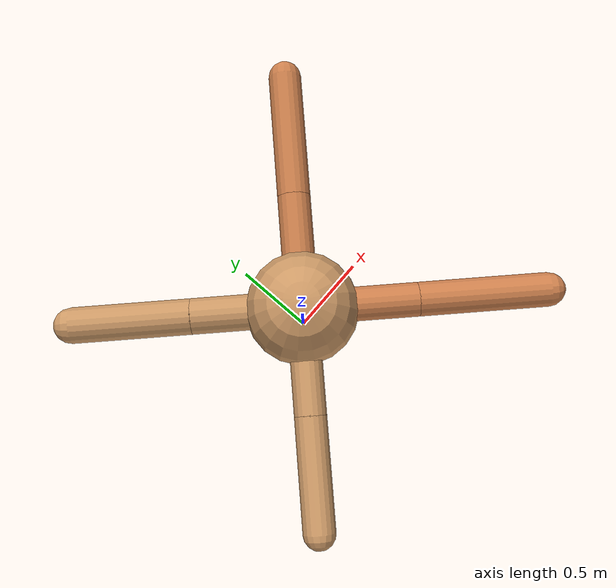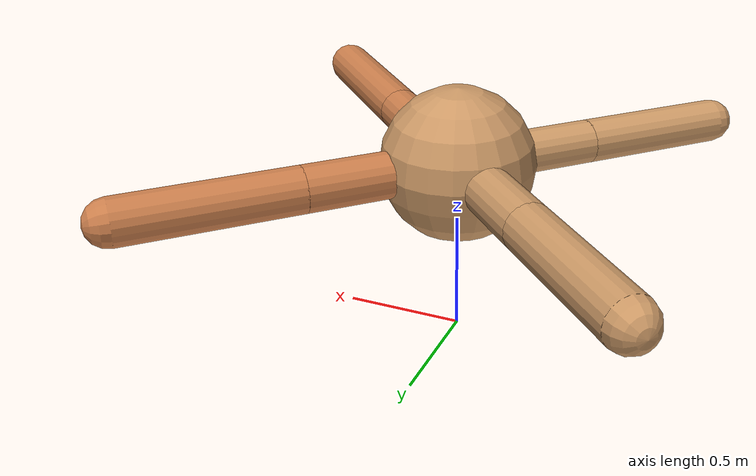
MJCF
<?xml version="1.0" ?>
<mujoco model="ant">

	<compiler angle="degree" coordinate="local" inertiafromgeom="true"/>

	<option integrator="RK4" timestep="0.01"/>

	<custom>

		<numeric data="0.0 0.0 0.55 1.0 0.0 0.0 0.0 0.0 1.0 0.0 -1.0 0.0 -1.0 0.0 1.0" name="init_qpos"/>

	</custom>

	<default>

		<joint armature="1" damping="1" limited="true"/>

		<geom conaffinity="0" condim="3" density="5.0" friction="1.5 0.1 0.1" margin="0.01" rgba="0.8 0.6 0.4 1"/>

	</default>

	<worldbody>

		<body name="torso" pos="0 0 0.75">

			<geom name="torso_geom" pos="0 0 0" size="0.31666438086398024" type="sphere"/>

			<!--joint armature="0" damping="0" limited="false" margin="0.01" name="root" pos="0 0 0" type="free"/-->

			<body name="front_left_leg" pos="0 0 0">

				<geom fromto="0 0 0 0.2 0.2 0" name="aux_1_geom" size="0.09446094950969601" type="capsule" rgba=".8 .5 .3 1"/>

				<body name="aux_1" pos="0.2 0.2 0">

					<joint axis="0 0 1" name="hip_1" pos="0.0 0.0 0.0" range="-40 40" type="hinge"/>

					<geom fromto="0 0 0 0.2522797572731427 0.2522797572731427 0" name="left_leg_geom" size="0.09446094950969601" type="capsule" rgba=".8 .5 .3 1"/>

					<body pos="0.2522797572731427 0.2522797572731427 0" name="front_left_foot">

						<joint axis="-1 1 0" name="ankle_1" pos="0.0 0.0 0.0" range="30 100" type="hinge"/>

						<geom fromto="0 0 0 0.5045595145462854 0.5045595145462854 0" name="left_ankle_geom" size="0.09446094950969601" type="capsule" rgba=".8 .5 .3 1"/>

					</body>

				</body>

			</body>

			<body name="front_right_leg" pos="0 0 0">

				<geom fromto="0 0 0 -0.2 0.2 0" name="aux_2_geom" size="0.10034875814401278" type="capsule"/>

				<body name="aux_2" pos="-0.2 0.2 0">

					<joint axis="0 0 1" name="hip_2" pos="0.0 0.0 0.0" range="-40 40" type="hinge"/>

					<geom fromto="0 0 0 -0.23397866624223693 0.23397866624223693 0" name="right_leg_geom" size="0.10034875814401278" type="capsule"/>

					<body pos="-0.23397866624223693 0.23397866624223693 0" name="front_right_foot">

						<joint axis="1 1 0" name="ankle_2" pos="0.0 0.0 0.0" range="-100 -30" type="hinge"/>

						<geom fromto="0 0 0 -0.46795733248447385 0.46795733248447385 0" name="right_ankle_geom" size="0.10034875814401278" type="capsule"/>

					</body>

				</body>

			</body>

			<body name="left_back_leg" pos="0 0 0">

				<geom fromto="0 0 0 -0.2 -0.2 0" name="aux_3_geom" size="0.09043442194013716" type="capsule"/>

				<body name="aux_3" pos="-0.2 -0.2 0">

					<joint axis="0 0 1" name="hip_3" pos="0.0 0.0 0.0" range="-40 40" type="hinge"/>

					<geom fromto="0 0 0 -0.21899838769955743 -0.21899838769955743 0" name="back_leg_geom" size="0.09043442194013716" type="capsule"/>

					<body pos="-0.21899838769955743 -0.21899838769955743 0" name="left_back_foot">

						<joint axis="-1 1 0" name="ankle_3" pos="0.0 0.0 0.0" range="-100 -30" type="hinge"/>

						<geom fromto="0 0 0 -0.43799677539911486 -0.43799677539911486 0" name="third_ankle_geom" size="0.09043442194013716" type="capsule"/>

					</body>

				</body>

			</body>

			<body name="right_back_leg" pos="0 0 0">

				<geom fromto="0 0 0 0.2 -0.2 0" name="aux_4_geom" size="0.09573719561799279" type="capsule" rgba=".8 .5 .3 1"/>

				<body name="aux_4" pos="0.2 -0.2 0">

					<joint axis="0 0 1" name="hip_4" pos="0.0 0.0 0.0" range="-40 40" type="hinge"/>

					<geom fromto="0 0 0 0.25640720254485894 -0.25640720254485894 0" name="rightback_leg_geom" size="0.09573719561799279" type="capsule" rgba=".8 .5 .3 1"/>

					<body pos="0.25640720254485894 -0.25640720254485894 0" name="right_back_foot">

						<joint axis="1 1 0" name="ankle_4" pos="0.0 0.0 0.0" range="30 100" type="hinge"/>

						<geom fromto="0 0 0 0.5128144050897179 -0.5128144050897179 0" name="fourth_ankle_geom" size="0.09573719561799279" type="capsule" rgba=".8 .5 .3 1"/>

					</body>

				</body>

			</body>

		</body>

	</worldbody>

	<actuator>

		<motor ctrllimited="true" ctrlrange="-1.0 1.0" joint="hip_4" gear="150"/>

		<motor ctrllimited="true" ctrlrange="-1.0 1.0" joint="ankle_4" gear="150"/>

		<motor ctrllimited="true" ctrlrange="-1.0 1.0" joint="hip_1" gear="150"/>

		<motor ctrllimited="true" ctrlrange="-1.0 1.0" joint="ankle_1" gear="150"/>

		<motor ctrllimited="true" ctrlrange="-1.0 1.0" joint="hip_2" gear="150"/>

		<motor ctrllimited="true" ctrlrange="-1.0 1.0" joint="ankle_2" gear="150"/>

		<motor ctrllimited="true" ctrlrange="-1.0 1.0" joint="hip_3" gear="150"/>

		<motor ctrllimited="true" ctrlrange="-1.0 1.0" joint="ankle_3" gear="150"/>

	</actuator>

</mujoco>
